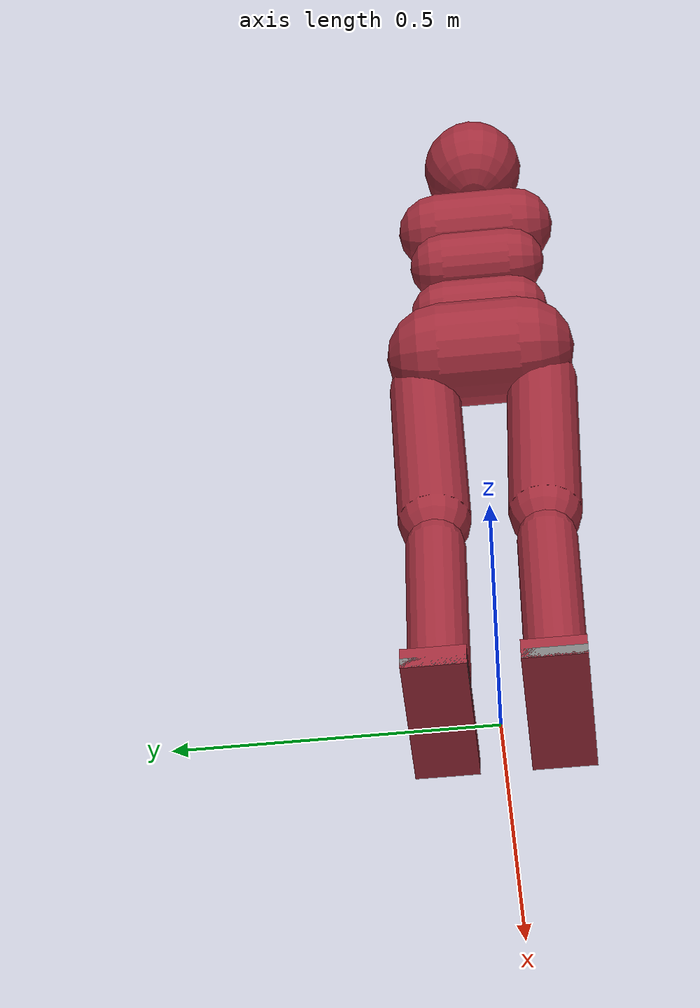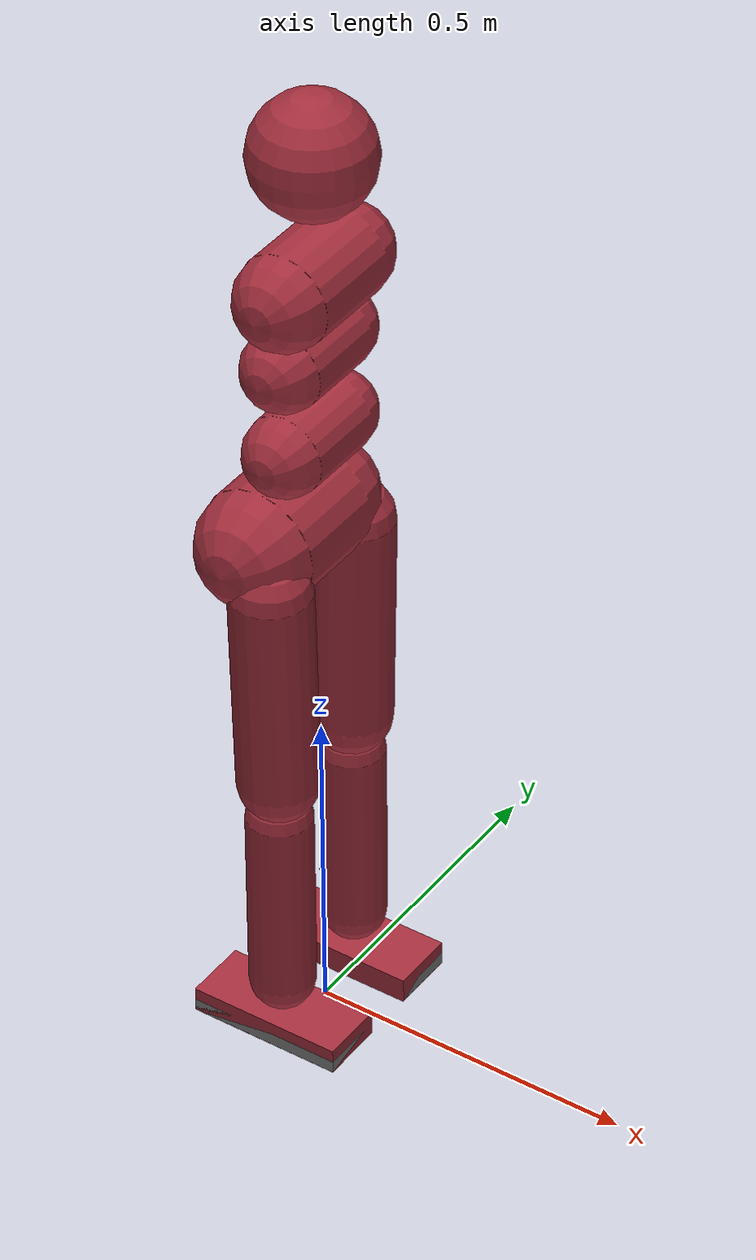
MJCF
<mujoco model="star_18dof">
  <compiler inertiafromgeom='auto' angle='degree' eulerseq='xyz'/>
  <option gravity='0 0 -10' iterations='50' integrator="RK4" solver='Newton' timestep='0.001'/>
  <asset>
    <texture name="body" type="cube" builtin="flat" mark="cross" width="127" height="1278"
             rgb1="0.8 0.6 0.4" rgb2="0.8 0.6 0.4" markrgb="1 1 1" random="0.01"/>
    <material name="body" texture="body" texuniform="true" rgba="0.8 0.3 .6 1"/>
  </asset>

  <default>
    <geom density="1700"/>
    <motor ctrlrange="-200 200" ctrllimited="true"/>
    <default class="body">
      <geom type="capsule" condim="1" friction=".8" solimp=".9 .99 .003" solref=".015 1" material="body"/>
      <joint type="hinge" damping=".2" armature=".01" limited="true" solimplimit="0 .99 .01"/>
      <default class="big_joint">
        <joint damping="5" stiffness="10"/>
        <default class="big_stiff_joint">
          <joint stiffness="20"/>
        </default>
      </default>

      <default class="torso_density1">
        <geom density="3000"/>
      </default>
      <default class="torso_density2">
        <geom density="3000"/>
      </default>
      <default class="torso_density3">
        <geom density="2000"/>
      </default>
      <default class="pelvis_density">
        <geom density="3700"/>
      </default>
      <default class="leg_density">
        <geom density="1700"/>
      </default>
    </default>
  </default>

  <visual>
    <map force="0.1" zfar="30"/>
    <rgba haze="0.15 0.25 0.35 1"/>
    <quality shadowsize="4096"/>
    <global offwidth="800" offheight="800"/>
  </visual>

  <worldbody>
    <light name="spotlight" mode="targetbodycom" target="torso"
           diffuse=".8 .8 .8" specular="0.3 0.3 0.3" pos="0 -20 4" cutoff="10"/>
    <body name="torso" pos="0 0 1.265" childclass="body">
      <light name="top" pos="0 0 2" mode="trackcom"/>
      <camera name="back" pos="-3 0 1" xyaxes="0 -1 0 1 0 2" mode="trackcom"/>
      <camera name="side" pos="0 -5 0.5" xyaxes="1 0 0 0 1 3" mode="trackcom"/>

      <joint type="free" limited='false'/>

      <geom name="torso" class="torso_density1" fromto="0 -.07 0 0 .07 0" size=".07" />

      <body name="head" pos="0 0 .19">
        <geom name="head" type="sphere" size=".09"/>
        <camera name="egocentric" pos=".09 0 0" xyaxes="0 -1 0 .1 0 1" fovy="80"/>
      </body>

      <body name="upper_waist" pos="-.01 0 -.12">
        <inertial pos="0 0 0" mass="5.0" diaginertia="0.05 0.05 0.02"/>
        <geom name="upper_waist" class="torso_density2" fromto="0 -.06 0 0 .06 0" size=".06"/>
      </body>

      <body name="lower_waist" pos="-.01 0 -.26">
        <geom name="lower_waist" class="torso_density3" fromto="0 -.06 0 0 .06 0" size=".06"/>
        <body name="pelvis" pos="0 0 -.165">
        <geom name="butt" class="pelvis_density" fromto="-.04 -.07 0 -.04 .07 0" size=".09"/>

          <!-- LEFT LEG -->
          <body name="left_hip_yaw_link" pos="0 .1 -.04">
            <inertial pos="0 0 0" mass="1.0" diaginertia="0.001 0.001 0.001"/>
            <joint type='hinge' name="left_hip_yaw_joint" axis="0 0 1" range="-50 20" limited='true' damping='1.0' frictionloss="0.1"/>
            <body name="left_hip_roll_link" pos="0 0 0">
              <inertial pos="0 0 0" mass="1.0" diaginertia="0.001 0.001 0.001"/>
              <joint type='hinge' name="left_hip_roll_joint" axis="1 0 0" range="-20 8" limited='true' damping='1.0' frictionloss="0.1"/>
              <body name="left_hip_pitch_link" pos="0 0 0">
                <inertial pos="0 0 -0.17" mass="6.0" diaginertia="0.1 0.1 0.02"/>
                <joint type='hinge' name="left_hip_pitch_joint" axis="0 1 0" range="-30 40" limited='true' damping='1.0' frictionloss="0.1"/>
                <site name='left_thigh' size='0.01' pos='0 0 -0.0' euler='0 0 0' rgba ='0 1 0 1'/>
                <geom name="left_thigh" class="leg_density" fromto="0 0 0 0 -.01 -.34" size=".06"/>

                <body name="left_knee_link" pos="0 -.01 -.403">
                  <inertial pos="0 0 -0.15" mass="4.0" diaginertia="0.08 0.08 0.01"/>
                  <joint name="left_knee_joint" pos="0 0 .02" axis="0 1 0" range="-5 100" limited='true' damping='0.2' frictionloss="0.1"/>
                  <site name='left_shin' size='0.01' pos='0 0 -0.0' euler='0 0 0' rgba ='0 1 0 1'/>
                  <geom name="left_shin" class="leg_density" fromto="0 0 0 0 0 -.3"  size=".049" />

                  <body name="left_ankle_roll_link" pos="-0.04 0 -.35">
                    <inertial pos="0 0 0" mass="0.5" diaginertia="0.001 0.001 0.001"/>
                    <joint name="left_ankle_roll_joint" pos="0 0 0.02" axis="1 0 0" range="-40 25" limited='true' damping='1.0' frictionloss="0.1"/>
                    <body name="left_ankle_pitch_link" pos="0.04 0 -0.02">
                      <inertial pos="0 0 0" mass="1.5" diaginertia="0.005 0.01 0.01"/>
                      <joint name="left_ankle_pitch_joint" pos="0 0 0" axis="0 1 0" range="-30 30" limited='true' damping='1.0' frictionloss="0.1"/>
                      <geom name="left_foot" class="leg_density" type="box" size="0.12 0.05 .02" />
                      <site name='left_foot_site' type="box" size='0.12 0.05 .01' pos='0.0 0 -0.01'/>
                    </body>
                  </body>
                </body>
              </body>
            </body>
          </body>

          <!-- RIGHT LEG -->
          <body name="right_hip_yaw_link" pos="0 -.1 -.04">
            <inertial pos="0 0 0" mass="1.0" diaginertia="0.001 0.001 0.001"/>
            <joint type='hinge' name="right_hip_yaw_joint" axis="0 0 1" range="-50 20" limited='true' damping='1.0' frictionloss="0.1"/>
            <body name="right_hip_roll_link" pos="0 0 0">
              <inertial pos="0 0 0" mass="1.0" diaginertia="0.001 0.001 0.001"/>
              <joint type='hinge' name="right_hip_roll_joint" axis="1 0 0" range="-20 8" limited='true' damping='1.0' frictionloss="0.1"/>
              <body name="right_hip_pitch_link" pos="0 0 0">
                <inertial pos="0 0 -0.17" mass="6.0" diaginertia="0.1 0.1 0.02"/>
                <joint type='hinge' name="right_hip_pitch_joint" axis="0 1 0" range="-30 40" limited='true' damping='1.0' frictionloss="0.1"/>
                <site name='right_thigh' size='0.01' pos='0 0 -0.0' euler='0 0 0' rgba ='0 1 0 1'/>
                <geom name="right_thigh" class="leg_density" fromto="0 0 0 0 .01 -.34" size=".06"/>

                <body name="right_knee_link" pos="0 .01 -.403">
                  <inertial pos="0 0 -0.15" mass="4.0" diaginertia="0.08 0.08 0.01"/>
                  <joint type='hinge' name="right_knee_joint" pos="0 0 .02" axis="0 1 0" range="-5 100" limited='true' damping='0.2' frictionloss="0.1"/>
                  <site name='right_shin' size='0.01' pos='0 0 -0.0' euler='0 0 0' rgba ='0 1 0 1'/>
                  <geom name="right_shin" class="leg_density" fromto="0 0 0 0 0 -.3"  size=".049"/>

                  <body name="right_ankle_roll_link" pos="-0.04 0 -.35">
                    <inertial pos="0 0 0" mass="0.5" diaginertia="0.001 0.001 0.001"/>
                    <joint name="right_ankle_roll_joint" pos="0 0 0.02" axis="1 0 0" range="-40 25" limited='true' damping='1.0' frictionloss="0.1"/>
                    <body name="right_ankle_pitch_link" pos="0.04 0 -0.02">
                      <inertial pos="0 0 0" mass="1.5" diaginertia="0.005 0.01 0.01"/>
                      <joint name="right_ankle_pitch_joint" pos="0 0 0" axis="0 1 0" range="-30 30" limited='true' damping='1.0' frictionloss="0.1"/>
                      <geom name="right_foot" class="leg_density" type="box" size="0.12 0.05 .02" />
                      <site name='right_foot_site' type="box" size='0.12 0.05 .01' pos='0.0 0 -0.01'/>
                    </body>
                  </body>
                </body>
              </body>
            </body>
          </body>

        </body>
      </body>
    </body>
  </worldbody>

  <actuator>
    <!-- LEFT LEG - order matches robot.py dof_names -->
    <motor name='left_hip_yaw_joint'      joint='left_hip_yaw_joint'      ctrllimited='true' ctrlrange='-351 351'/>
    <motor name='left_hip_roll_joint'     joint='left_hip_roll_joint'     ctrllimited='true' ctrlrange='-351 351'/>
    <motor name='left_hip_pitch_joint'    joint='left_hip_pitch_joint'    ctrllimited='true' ctrlrange='-298 298'/>
    <motor name='left_knee_joint'         joint='left_knee_joint'         ctrllimited='true' ctrlrange='-420 420'/>
    <motor name='left_ankle_roll_joint'   joint='left_ankle_roll_joint'   ctrllimited='true' ctrlrange='-131 131'/>
    <motor name='left_ankle_pitch_joint'  joint='left_ankle_pitch_joint'  ctrllimited='true' ctrlrange='-262 262'/>

    <!-- RIGHT LEG -->
    <motor name='right_hip_yaw_joint'     joint='right_hip_yaw_joint'     ctrllimited='true' ctrlrange='-351 351'/>
    <motor name='right_hip_roll_joint'    joint='right_hip_roll_joint'    ctrllimited='true' ctrlrange='-351 351'/>
    <motor name='right_hip_pitch_joint'   joint='right_hip_pitch_joint'   ctrllimited='true' ctrlrange='-298 298'/>
    <motor name='right_knee_joint'        joint='right_knee_joint'        ctrllimited='true' ctrlrange='-420 420'/>
    <motor name='right_ankle_roll_joint'  joint='right_ankle_roll_joint'  ctrllimited='true' ctrlrange='-131 131'/>
    <motor name='right_ankle_pitch_joint' joint='right_ankle_pitch_joint' ctrllimited='true' ctrlrange='-262 262'/>
  </actuator>

  <sensor>
    <touch name='touch_left_foot'   site='left_foot_site' />
    <touch name='touch_right_foot'  site='right_foot_site' />
  </sensor>

</mujoco>
